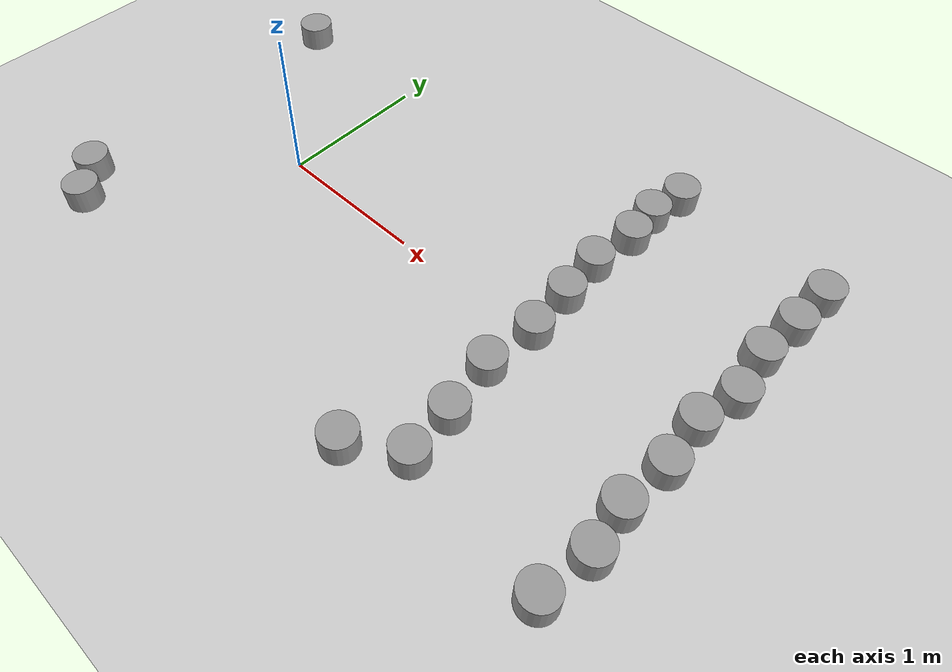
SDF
<sdf version="1.6">
 <world name="default">
  <model name="ground_plane">
   <static>1</static>
   <link name="link">
    <collision name="collision">
     <geometry><plane><normal>0 0 1</normal><size>100 100</size></plane></geometry>
     <surface>
      <contact><collide_bitmask>65535</collide_bitmask></contact>
      <friction><ode><mu>100</mu><mu2>50</mu2></ode></friction>
     </surface>
    </collision>
    <visual name="visual">
     <cast_shadows>0</cast_shadows>
     <geometry><plane><normal>0 0 1</normal><size>100 100</size></plane></geometry>
     <material>
      <script><uri>file://media/materials/scripts/gazebo.material</uri><name>Gazebo/Grey</name></script>
     </material>
    </visual>
   </link>
  </model>
  <model name="pillar_clone_25">
   <link name="link_0">
    <inertial>
     <mass>0.0172437</mass>
     <inertia>
      <ixx>0.000207925</ixx>
      <ixy>0</ixy>
      <ixz>0</ixz>
      <iyy>0.000207925</iyy>
      <iyz>0</iyz>
      <izz>0.000114861</izz>
     </inertia>
    </inertial>
    <pose>2e-06 -0 0 0 -0 0</pose>
    <visual name="visual">
     <geometry><cylinder><radius>0.115422</radius><length>0.32362</length></cylinder></geometry>
     <material>
      <lighting>1</lighting>
      <script><uri>file://media/materials/scripts/gazebo.material</uri><name>Gazebo/Grey</name></script>
      <shader type="vertex"><normal_map>__default__</normal_map></shader>
     </material>
    </visual>
    <collision name="collision">
     <geometry><cylinder><radius>0.115422</radius><length>0.32362</length></cylinder></geometry>
     <surface>
      <friction>
       <ode><mu>1</mu><mu2>1</mu2><fdir1>0 0 0</fdir1><slip1>0</slip1><slip2>0</slip2></ode>
       <torsional>
        <coefficient>1</coefficient>
        <patch_radius>0</patch_radius>
        <surface_radius>0</surface_radius>
        <use_patch_radius>1</use_patch_radius>
        <ode><slip>0</slip></ode>
       </torsional>
      </friction>
      <bounce><restitution_coefficient>0</restitution_coefficient><threshold>1e+06</threshold></bounce>
      <contact>
       <collide_without_contact>0</collide_without_contact>
       <collide_without_contact_bitmask>1</collide_without_contact_bitmask>
       <collide_bitmask>1</collide_bitmask>
       <ode>
        <soft_cfm>0</soft_cfm>
        <soft_erp>0.2</soft_erp>
        <kp>1e+13</kp>
        <kd>1</kd>
        <max_vel>0.01</max_vel>
        <min_depth>0</min_depth>
       </ode>
       <bullet>
        <split_impulse>1</split_impulse>
        <split_impulse_penetration_threshold>-0.01</split_impulse_penetration_threshold>
        <soft_cfm>0</soft_cfm>
        <soft_erp>0.2</soft_erp>
        <kp>1e+13</kp>
        <kd>1</kd>
       </bullet>
      </contact>
     </surface>
    </collision>
   </link>
   <static>1</static>
   <pose>3.08087 1.39534 0 0 -0 0</pose>
  </model>
  <model name="pillar_clone_26">
   <link name="link_0">
    <inertial>
     <mass>0.0172437</mass>
     <inertia>
      <ixx>0.000207925</ixx>
      <ixy>0</ixy>
      <ixz>0</ixz>
      <iyy>0.000207925</iyy>
      <iyz>0</iyz>
      <izz>0.000114861</izz>
     </inertia>
    </inertial>
    <pose>2e-06 -0 0 0 -0 0</pose>
    <visual name="visual">
     <geometry><cylinder><radius>0.115422</radius><length>0.32362</length></cylinder></geometry>
     <material>
      <lighting>1</lighting>
      <script><uri>file://media/materials/scripts/gazebo.material</uri><name>Gazebo/Grey</name></script>
      <shader type="vertex"><normal_map>__default__</normal_map></shader>
     </material>
    </visual>
    <collision name="collision">
     <geometry><cylinder><radius>0.115422</radius><length>0.32362</length></cylinder></geometry>
     <surface>
      <friction>
       <ode><mu>1</mu><mu2>1</mu2><fdir1>0 0 0</fdir1><slip1>0</slip1><slip2>0</slip2></ode>
       <torsional>
        <coefficient>1</coefficient>
        <patch_radius>0</patch_radius>
        <surface_radius>0</surface_radius>
        <use_patch_radius>1</use_patch_radius>
        <ode><slip>0</slip></ode>
       </torsional>
      </friction>
      <bounce><restitution_coefficient>0</restitution_coefficient><threshold>1e+06</threshold></bounce>
      <contact>
       <collide_without_contact>0</collide_without_contact>
       <collide_without_contact_bitmask>1</collide_without_contact_bitmask>
       <collide_bitmask>1</collide_bitmask>
       <ode>
        <soft_cfm>0</soft_cfm>
        <soft_erp>0.2</soft_erp>
        <kp>1e+13</kp>
        <kd>1</kd>
        <max_vel>0.01</max_vel>
        <min_depth>0</min_depth>
       </ode>
       <bullet>
        <split_impulse>1</split_impulse>
        <split_impulse_penetration_threshold>-0.01</split_impulse_penetration_threshold>
        <soft_cfm>0</soft_cfm>
        <soft_erp>0.2</soft_erp>
        <kp>1e+13</kp>
        <kd>1</kd>
       </bullet>
      </contact>
     </surface>
    </collision>
   </link>
   <static>1</static>
   <pose>3.0662 1.09873 0 0 -0 0</pose>
  </model>
  <model name="pillar_clone_27">
   <link name="link_0">
    <inertial>
     <mass>0.0172437</mass>
     <inertia>
      <ixx>0.000207925</ixx>
      <ixy>0</ixy>
      <ixz>0</ixz>
      <iyy>0.000207925</iyy>
      <iyz>0</iyz>
      <izz>0.000114861</izz>
     </inertia>
    </inertial>
    <pose>2e-06 -0 0 0 -0 0</pose>
    <visual name="visual">
     <geometry><cylinder><radius>0.115422</radius><length>0.32362</length></cylinder></geometry>
     <material>
      <lighting>1</lighting>
      <script><uri>file://media/materials/scripts/gazebo.material</uri><name>Gazebo/Grey</name></script>
      <shader type="vertex"><normal_map>__default__</normal_map></shader>
     </material>
    </visual>
    <collision name="collision">
     <geometry><cylinder><radius>0.115422</radius><length>0.32362</length></cylinder></geometry>
     <surface>
      <friction>
       <ode><mu>1</mu><mu2>1</mu2><fdir1>0 0 0</fdir1><slip1>0</slip1><slip2>0</slip2></ode>
       <torsional>
        <coefficient>1</coefficient>
        <patch_radius>0</patch_radius>
        <surface_radius>0</surface_radius>
        <use_patch_radius>1</use_patch_radius>
        <ode><slip>0</slip></ode>
       </torsional>
      </friction>
      <bounce><restitution_coefficient>0</restitution_coefficient><threshold>1e+06</threshold></bounce>
      <contact>
       <collide_without_contact>0</collide_without_contact>
       <collide_without_contact_bitmask>1</collide_without_contact_bitmask>
       <collide_bitmask>1</collide_bitmask>
       <ode>
        <soft_cfm>0</soft_cfm>
        <soft_erp>0.2</soft_erp>
        <kp>1e+13</kp>
        <kd>1</kd>
        <max_vel>0.01</max_vel>
        <min_depth>0</min_depth>
       </ode>
       <bullet>
        <split_impulse>1</split_impulse>
        <split_impulse_penetration_threshold>-0.01</split_impulse_penetration_threshold>
        <soft_cfm>0</soft_cfm>
        <soft_erp>0.2</soft_erp>
        <kp>1e+13</kp>
        <kd>1</kd>
       </bullet>
      </contact>
     </surface>
    </collision>
   </link>
   <static>1</static>
   <pose>3.03882 0.786964 0 0 -0 0</pose>
  </model>
  <model name="pillar_clone_28">
   <link name="link_0">
    <inertial>
     <mass>0.0172437</mass>
     <inertia>
      <ixx>0.000207925</ixx>
      <ixy>0</ixy>
      <ixz>0</ixz>
      <iyy>0.000207925</iyy>
      <iyz>0</iyz>
      <izz>0.000114861</izz>
     </inertia>
    </inertial>
    <pose>2e-06 -0 0 0 -0 0</pose>
    <visual name="visual">
     <geometry><cylinder><radius>0.115422</radius><length>0.32362</length></cylinder></geometry>
     <material>
      <lighting>1</lighting>
      <script><uri>file://media/materials/scripts/gazebo.material</uri><name>Gazebo/Grey</name></script>
      <shader type="vertex"><normal_map>__default__</normal_map></shader>
     </material>
    </visual>
    <collision name="collision">
     <geometry><cylinder><radius>0.115422</radius><length>0.32362</length></cylinder></geometry>
     <surface>
      <friction>
       <ode><mu>1</mu><mu2>1</mu2><fdir1>0 0 0</fdir1><slip1>0</slip1><slip2>0</slip2></ode>
       <torsional>
        <coefficient>1</coefficient>
        <patch_radius>0</patch_radius>
        <surface_radius>0</surface_radius>
        <use_patch_radius>1</use_patch_radius>
        <ode><slip>0</slip></ode>
       </torsional>
      </friction>
      <bounce><restitution_coefficient>0</restitution_coefficient><threshold>1e+06</threshold></bounce>
      <contact>
       <collide_without_contact>0</collide_without_contact>
       <collide_without_contact_bitmask>1</collide_without_contact_bitmask>
       <collide_bitmask>1</collide_bitmask>
       <ode>
        <soft_cfm>0</soft_cfm>
        <soft_erp>0.2</soft_erp>
        <kp>1e+13</kp>
        <kd>1</kd>
        <max_vel>0.01</max_vel>
        <min_depth>0</min_depth>
       </ode>
       <bullet>
        <split_impulse>1</split_impulse>
        <split_impulse_penetration_threshold>-0.01</split_impulse_penetration_threshold>
        <soft_cfm>0</soft_cfm>
        <soft_erp>0.2</soft_erp>
        <kp>1e+13</kp>
        <kd>1</kd>
       </bullet>
      </contact>
     </surface>
    </collision>
   </link>
   <static>1</static>
   <pose>3.08397 0.469575 0 0 -0 0</pose>
  </model>
  <model name="pillar_clone_29">
   <link name="link_0">
    <inertial>
     <mass>0.0172437</mass>
     <inertia>
      <ixx>0.000207925</ixx>
      <ixy>0</ixy>
      <ixz>0</ixz>
      <iyy>0.000207925</iyy>
      <iyz>0</iyz>
      <izz>0.000114861</izz>
     </inertia>
    </inertial>
    <pose>2e-06 -0 0 0 -0 0</pose>
    <visual name="visual">
     <geometry><cylinder><radius>0.115422</radius><length>0.32362</length></cylinder></geometry>
     <material>
      <lighting>1</lighting>
      <script><uri>file://media/materials/scripts/gazebo.material</uri><name>Gazebo/Grey</name></script>
      <shader type="vertex"><normal_map>__default__</normal_map></shader>
     </material>
    </visual>
    <collision name="collision">
     <geometry><cylinder><radius>0.115422</radius><length>0.32362</length></cylinder></geometry>
     <surface>
      <friction>
       <ode><mu>1</mu><mu2>1</mu2><fdir1>0 0 0</fdir1><slip1>0</slip1><slip2>0</slip2></ode>
       <torsional>
        <coefficient>1</coefficient>
        <patch_radius>0</patch_radius>
        <surface_radius>0</surface_radius>
        <use_patch_radius>1</use_patch_radius>
        <ode><slip>0</slip></ode>
       </torsional>
      </friction>
      <bounce><restitution_coefficient>0</restitution_coefficient><threshold>1e+06</threshold></bounce>
      <contact>
       <collide_without_contact>0</collide_without_contact>
       <collide_without_contact_bitmask>1</collide_without_contact_bitmask>
       <collide_bitmask>1</collide_bitmask>
       <ode>
        <soft_cfm>0</soft_cfm>
        <soft_erp>0.2</soft_erp>
        <kp>1e+13</kp>
        <kd>1</kd>
        <max_vel>0.01</max_vel>
        <min_depth>0</min_depth>
       </ode>
       <bullet>
        <split_impulse>1</split_impulse>
        <split_impulse_penetration_threshold>-0.01</split_impulse_penetration_threshold>
        <soft_cfm>0</soft_cfm>
        <soft_erp>0.2</soft_erp>
        <kp>1e+13</kp>
        <kd>1</kd>
       </bullet>
      </contact>
     </surface>
    </collision>
   </link>
   <static>1</static>
   <pose>3.0183 0.177162 0 0 -0 0</pose>
  </model>
  <model name="pillar_clone_30">
   <link name="link_0">
    <inertial>
     <mass>0.0172437</mass>
     <inertia>
      <ixx>0.000207925</ixx>
      <ixy>0</ixy>
      <ixz>0</ixz>
      <iyy>0.000207925</iyy>
      <iyz>0</iyz>
      <izz>0.000114861</izz>
     </inertia>
    </inertial>
    <pose>2e-06 -0 0 0 -0 0</pose>
    <visual name="visual">
     <geometry><cylinder><radius>0.115422</radius><length>0.32362</length></cylinder></geometry>
     <material>
      <lighting>1</lighting>
      <script><uri>file://media/materials/scripts/gazebo.material</uri><name>Gazebo/Grey</name></script>
      <shader type="vertex"><normal_map>__default__</normal_map></shader>
     </material>
    </visual>
    <collision name="collision">
     <geometry><cylinder><radius>0.115422</radius><length>0.32362</length></cylinder></geometry>
     <surface>
      <friction>
       <ode><mu>1</mu><mu2>1</mu2><fdir1>0 0 0</fdir1><slip1>0</slip1><slip2>0</slip2></ode>
       <torsional>
        <coefficient>1</coefficient>
        <patch_radius>0</patch_radius>
        <surface_radius>0</surface_radius>
        <use_patch_radius>1</use_patch_radius>
        <ode><slip>0</slip></ode>
       </torsional>
      </friction>
      <bounce><restitution_coefficient>0</restitution_coefficient><threshold>1e+06</threshold></bounce>
      <contact>
       <collide_without_contact>0</collide_without_contact>
       <collide_without_contact_bitmask>1</collide_without_contact_bitmask>
       <collide_bitmask>1</collide_bitmask>
       <ode>
        <soft_cfm>0</soft_cfm>
        <soft_erp>0.2</soft_erp>
        <kp>1e+13</kp>
        <kd>1</kd>
        <max_vel>0.01</max_vel>
        <min_depth>0</min_depth>
       </ode>
       <bullet>
        <split_impulse>1</split_impulse>
        <split_impulse_penetration_threshold>-0.01</split_impulse_penetration_threshold>
        <soft_cfm>0</soft_cfm>
        <soft_erp>0.2</soft_erp>
        <kp>1e+13</kp>
        <kd>1</kd>
       </bullet>
      </contact>
     </surface>
    </collision>
   </link>
   <static>1</static>
   <pose>3.04633 -0.136981 0 0 -0 0</pose>
  </model>
  <model name="pillar_clone_31">
   <link name="link_0">
    <inertial>
     <mass>0.0172437</mass>
     <inertia>
      <ixx>0.000207925</ixx>
      <ixy>0</ixy>
      <ixz>0</ixz>
      <iyy>0.000207925</iyy>
      <iyz>0</iyz>
      <izz>0.000114861</izz>
     </inertia>
    </inertial>
    <pose>2e-06 -0 0 0 -0 0</pose>
    <visual name="visual">
     <geometry><cylinder><radius>0.115422</radius><length>0.32362</length></cylinder></geometry>
     <material>
      <lighting>1</lighting>
      <script><uri>file://media/materials/scripts/gazebo.material</uri><name>Gazebo/Grey</name></script>
      <shader type="vertex"><normal_map>__default__</normal_map></shader>
     </material>
    </visual>
    <collision name="collision">
     <geometry><cylinder><radius>0.115422</radius><length>0.32362</length></cylinder></geometry>
     <surface>
      <friction>
       <ode><mu>1</mu><mu2>1</mu2><fdir1>0 0 0</fdir1><slip1>0</slip1><slip2>0</slip2></ode>
       <torsional>
        <coefficient>1</coefficient>
        <patch_radius>0</patch_radius>
        <surface_radius>0</surface_radius>
        <use_patch_radius>1</use_patch_radius>
        <ode><slip>0</slip></ode>
       </torsional>
      </friction>
      <bounce><restitution_coefficient>0</restitution_coefficient><threshold>1e+06</threshold></bounce>
      <contact>
       <collide_without_contact>0</collide_without_contact>
       <collide_without_contact_bitmask>1</collide_without_contact_bitmask>
       <collide_bitmask>1</collide_bitmask>
       <ode>
        <soft_cfm>0</soft_cfm>
        <soft_erp>0.2</soft_erp>
        <kp>1e+13</kp>
        <kd>1</kd>
        <max_vel>0.01</max_vel>
        <min_depth>0</min_depth>
       </ode>
       <bullet>
        <split_impulse>1</split_impulse>
        <split_impulse_penetration_threshold>-0.01</split_impulse_penetration_threshold>
        <soft_cfm>0</soft_cfm>
        <soft_erp>0.2</soft_erp>
        <kp>1e+13</kp>
        <kd>1</kd>
       </bullet>
      </contact>
     </surface>
    </collision>
   </link>
   <static>1</static>
   <pose>3.01254 -0.476016 0 0 -0 0</pose>
  </model>
  <model name="pillar_clone_32">
   <link name="link_0">
    <inertial>
     <mass>0.0172437</mass>
     <inertia>
      <ixx>0.000207925</ixx>
      <ixy>0</ixy>
      <ixz>0</ixz>
      <iyy>0.000207925</iyy>
      <iyz>0</iyz>
      <izz>0.000114861</izz>
     </inertia>
    </inertial>
    <pose>2e-06 -0 0 0 -0 0</pose>
    <visual name="visual">
     <geometry><cylinder><radius>0.115422</radius><length>0.32362</length></cylinder></geometry>
     <material>
      <lighting>1</lighting>
      <script><uri>file://media/materials/scripts/gazebo.material</uri><name>Gazebo/Grey</name></script>
      <shader type="vertex"><normal_map>__default__</normal_map></shader>
     </material>
    </visual>
    <collision name="collision">
     <geometry><cylinder><radius>0.115422</radius><length>0.32362</length></cylinder></geometry>
     <surface>
      <friction>
       <ode><mu>1</mu><mu2>1</mu2><fdir1>0 0 0</fdir1><slip1>0</slip1><slip2>0</slip2></ode>
       <torsional>
        <coefficient>1</coefficient>
        <patch_radius>0</patch_radius>
        <surface_radius>0</surface_radius>
        <use_patch_radius>1</use_patch_radius>
        <ode><slip>0</slip></ode>
       </torsional>
      </friction>
      <bounce><restitution_coefficient>0</restitution_coefficient><threshold>1e+06</threshold></bounce>
      <contact>
       <collide_without_contact>0</collide_without_contact>
       <collide_without_contact_bitmask>1</collide_without_contact_bitmask>
       <collide_bitmask>1</collide_bitmask>
       <ode>
        <soft_cfm>0</soft_cfm>
        <soft_erp>0.2</soft_erp>
        <kp>1e+13</kp>
        <kd>1</kd>
        <max_vel>0.01</max_vel>
        <min_depth>0</min_depth>
       </ode>
       <bullet>
        <split_impulse>1</split_impulse>
        <split_impulse_penetration_threshold>-0.01</split_impulse_penetration_threshold>
        <soft_cfm>0</soft_cfm>
        <soft_erp>0.2</soft_erp>
        <kp>1e+13</kp>
        <kd>1</kd>
       </bullet>
      </contact>
     </surface>
    </collision>
   </link>
   <static>1</static>
   <pose>3.05111 -0.761142 0 0 -0 0</pose>
  </model>
  <model name="pillar_clone_33">
   <link name="link_0">
    <inertial>
     <mass>0.0172437</mass>
     <inertia>
      <ixx>0.000207925</ixx>
      <ixy>0</ixy>
      <ixz>0</ixz>
      <iyy>0.000207925</iyy>
      <iyz>0</iyz>
      <izz>0.000114861</izz>
     </inertia>
    </inertial>
    <pose>2e-06 -0 0 0 -0 0</pose>
    <visual name="visual">
     <geometry><cylinder><radius>0.115422</radius><length>0.32362</length></cylinder></geometry>
     <material>
      <lighting>1</lighting>
      <script><uri>file://media/materials/scripts/gazebo.material</uri><name>Gazebo/Grey</name></script>
      <shader type="vertex"><normal_map>__default__</normal_map></shader>
     </material>
    </visual>
    <collision name="collision">
     <geometry><cylinder><radius>0.115422</radius><length>0.32362</length></cylinder></geometry>
     <surface>
      <friction>
       <ode><mu>1</mu><mu2>1</mu2><fdir1>0 0 0</fdir1><slip1>0</slip1><slip2>0</slip2></ode>
       <torsional>
        <coefficient>1</coefficient>
        <patch_radius>0</patch_radius>
        <surface_radius>0</surface_radius>
        <use_patch_radius>1</use_patch_radius>
        <ode><slip>0</slip></ode>
       </torsional>
      </friction>
      <bounce><restitution_coefficient>0</restitution_coefficient><threshold>1e+06</threshold></bounce>
      <contact>
       <collide_without_contact>0</collide_without_contact>
       <collide_without_contact_bitmask>1</collide_without_contact_bitmask>
       <collide_bitmask>1</collide_bitmask>
       <ode>
        <soft_cfm>0</soft_cfm>
        <soft_erp>0.2</soft_erp>
        <kp>1e+13</kp>
        <kd>1</kd>
        <max_vel>0.01</max_vel>
        <min_depth>0</min_depth>
       </ode>
       <bullet>
        <split_impulse>1</split_impulse>
        <split_impulse_penetration_threshold>-0.01</split_impulse_penetration_threshold>
        <soft_cfm>0</soft_cfm>
        <soft_erp>0.2</soft_erp>
        <kp>1e+13</kp>
        <kd>1</kd>
       </bullet>
      </contact>
     </surface>
    </collision>
   </link>
   <static>1</static>
   <pose>3.0028 -1.10097 0 0 -0 0</pose>
  </model>
  <model name="pillar_clone_36_clone_27">
   <link name="link_0">
    <inertial>
     <mass>0.0172437</mass>
     <inertia>
      <ixx>0.000207925</ixx>
      <ixy>0</ixy>
      <ixz>0</ixz>
      <iyy>0.000207925</iyy>
      <iyz>0</iyz>
      <izz>0.000114861</izz>
     </inertia>
    </inertial>
    <pose>2e-06 -0 0 0 -0 0</pose>
    <visual name="visual">
     <geometry><cylinder><radius>0.115422</radius><length>0.32362</length></cylinder></geometry>
     <material>
      <lighting>1</lighting>
      <script><uri>file://media/materials/scripts/gazebo.material</uri><name>Gazebo/Grey</name></script>
      <shader type="vertex"><normal_map>__default__</normal_map></shader>
     </material>
    </visual>
    <collision name="collision">
     <geometry><cylinder><radius>0.115422</radius><length>0.32362</length></cylinder></geometry>
     <surface>
      <friction>
       <ode><mu>1</mu><mu2>1</mu2><fdir1>0 0 0</fdir1><slip1>0</slip1><slip2>0</slip2></ode>
       <torsional>
        <coefficient>1</coefficient>
        <patch_radius>0</patch_radius>
        <surface_radius>0</surface_radius>
        <use_patch_radius>1</use_patch_radius>
        <ode><slip>0</slip></ode>
       </torsional>
      </friction>
      <bounce><restitution_coefficient>0</restitution_coefficient><threshold>1e+06</threshold></bounce>
      <contact>
       <collide_without_contact>0</collide_without_contact>
       <collide_without_contact_bitmask>1</collide_without_contact_bitmask>
       <collide_bitmask>1</collide_bitmask>
       <ode>
        <soft_cfm>0</soft_cfm>
        <soft_erp>0.2</soft_erp>
        <kp>1e+13</kp>
        <kd>1</kd>
        <max_vel>0.01</max_vel>
        <min_depth>0</min_depth>
       </ode>
       <bullet>
        <split_impulse>1</split_impulse>
        <split_impulse_penetration_threshold>-0.01</split_impulse_penetration_threshold>
        <soft_cfm>0</soft_cfm>
        <soft_erp>0.2</soft_erp>
        <kp>1e+13</kp>
        <kd>1</kd>
       </bullet>
      </contact>
     </surface>
    </collision>
   </link>
   <static>1</static>
   <pose>2.0719 -1.00318 0 0 -0 0</pose>
  </model>
  <model name="pillar_clone_36_clone_28">
   <link name="link_0">
    <inertial>
     <mass>0.0172437</mass>
     <inertia>
      <ixx>0.000207925</ixx>
      <ixy>0</ixy>
      <ixz>0</ixz>
      <iyy>0.000207925</iyy>
      <iyz>0</iyz>
      <izz>0.000114861</izz>
     </inertia>
    </inertial>
    <pose>2e-06 -0 0 0 -0 0</pose>
    <visual name="visual">
     <geometry><cylinder><radius>0.115422</radius><length>0.32362</length></cylinder></geometry>
     <material>
      <lighting>1</lighting>
      <script><uri>file://media/materials/scripts/gazebo.material</uri><name>Gazebo/Grey</name></script>
      <shader type="vertex"><normal_map>__default__</normal_map></shader>
     </material>
    </visual>
    <collision name="collision">
     <geometry><cylinder><radius>0.115422</radius><length>0.32362</length></cylinder></geometry>
     <surface>
      <friction>
       <ode><mu>1</mu><mu2>1</mu2><fdir1>0 0 0</fdir1><slip1>0</slip1><slip2>0</slip2></ode>
       <torsional>
        <coefficient>1</coefficient>
        <patch_radius>0</patch_radius>
        <surface_radius>0</surface_radius>
        <use_patch_radius>1</use_patch_radius>
        <ode><slip>0</slip></ode>
       </torsional>
      </friction>
      <bounce><restitution_coefficient>0</restitution_coefficient><threshold>1e+06</threshold></bounce>
      <contact>
       <collide_without_contact>0</collide_without_contact>
       <collide_without_contact_bitmask>1</collide_without_contact_bitmask>
       <collide_bitmask>1</collide_bitmask>
       <ode>
        <soft_cfm>0</soft_cfm>
        <soft_erp>0.2</soft_erp>
        <kp>1e+13</kp>
        <kd>1</kd>
        <max_vel>0.01</max_vel>
        <min_depth>0</min_depth>
       </ode>
       <bullet>
        <split_impulse>1</split_impulse>
        <split_impulse_penetration_threshold>-0.01</split_impulse_penetration_threshold>
        <soft_cfm>0</soft_cfm>
        <soft_erp>0.2</soft_erp>
        <kp>1e+13</kp>
        <kd>1</kd>
       </bullet>
      </contact>
     </surface>
    </collision>
   </link>
   <static>1</static>
   <pose>-0.938646 -0.983259 0 0 -0 0</pose>
  </model>
  <model name="pillar_clone_36_clone_34">
   <link name="link_0">
    <inertial>
     <mass>0.0172437</mass>
     <inertia>
      <ixx>0.000207925</ixx>
      <ixy>0</ixy>
      <ixz>0</ixz>
      <iyy>0.000207925</iyy>
      <iyz>0</iyz>
      <izz>0.000114861</izz>
     </inertia>
    </inertial>
    <pose>2e-06 -0 0 0 -0 0</pose>
    <visual name="visual">
     <geometry><cylinder><radius>0.115422</radius><length>0.32362</length></cylinder></geometry>
     <material>
      <lighting>1</lighting>
      <script><uri>file://media/materials/scripts/gazebo.material</uri><name>Gazebo/Grey</name></script>
      <shader type="vertex"><normal_map>__default__</normal_map></shader>
     </material>
    </visual>
    <collision name="collision">
     <geometry><cylinder><radius>0.115422</radius><length>0.32362</length></cylinder></geometry>
     <surface>
      <friction>
       <ode><mu>1</mu><mu2>1</mu2><fdir1>0 0 0</fdir1><slip1>0</slip1><slip2>0</slip2></ode>
       <torsional>
        <coefficient>1</coefficient>
        <patch_radius>0</patch_radius>
        <surface_radius>0</surface_radius>
        <use_patch_radius>1</use_patch_radius>
        <ode><slip>0</slip></ode>
       </torsional>
      </friction>
      <bounce><restitution_coefficient>0</restitution_coefficient><threshold>1e+06</threshold></bounce>
      <contact>
       <collide_without_contact>0</collide_without_contact>
       <collide_without_contact_bitmask>1</collide_without_contact_bitmask>
       <collide_bitmask>1</collide_bitmask>
       <ode>
        <soft_cfm>0</soft_cfm>
        <soft_erp>0.2</soft_erp>
        <kp>1e+13</kp>
        <kd>1</kd>
        <max_vel>0.01</max_vel>
        <min_depth>0</min_depth>
       </ode>
       <bullet>
        <split_impulse>1</split_impulse>
        <split_impulse_penetration_threshold>-0.01</split_impulse_penetration_threshold>
        <soft_cfm>0</soft_cfm>
        <soft_erp>0.2</soft_erp>
        <kp>1e+13</kp>
        <kd>1</kd>
       </bullet>
      </contact>
     </surface>
    </collision>
   </link>
   <static>1</static>
   <pose>2.02673 1.48468 0 0 -0 0</pose>
  </model>
  <model name="pillar_clone_36_clone_35">
   <link name="link_0">
    <inertial>
     <mass>0.0172437</mass>
     <inertia>
      <ixx>0.000207925</ixx>
      <ixy>0</ixy>
      <ixz>0</ixz>
      <iyy>0.000207925</iyy>
      <iyz>0</iyz>
      <izz>0.000114861</izz>
     </inertia>
    </inertial>
    <pose>2e-06 -0 0 0 -0 0</pose>
    <visual name="visual">
     <geometry><cylinder><radius>0.115422</radius><length>0.32362</length></cylinder></geometry>
     <material>
      <lighting>1</lighting>
      <script><uri>file://media/materials/scripts/gazebo.material</uri><name>Gazebo/Grey</name></script>
      <shader type="vertex"><normal_map>__default__</normal_map></shader>
     </material>
    </visual>
    <collision name="collision">
     <geometry><cylinder><radius>0.115422</radius><length>0.32362</length></cylinder></geometry>
     <surface>
      <friction>
       <ode><mu>1</mu><mu2>1</mu2><fdir1>0 0 0</fdir1><slip1>0</slip1><slip2>0</slip2></ode>
       <torsional>
        <coefficient>1</coefficient>
        <patch_radius>0</patch_radius>
        <surface_radius>0</surface_radius>
        <use_patch_radius>1</use_patch_radius>
        <ode><slip>0</slip></ode>
       </torsional>
      </friction>
      <bounce><restitution_coefficient>0</restitution_coefficient><threshold>1e+06</threshold></bounce>
      <contact>
       <collide_without_contact>0</collide_without_contact>
       <collide_without_contact_bitmask>1</collide_without_contact_bitmask>
       <collide_bitmask>1</collide_bitmask>
       <ode>
        <soft_cfm>0</soft_cfm>
        <soft_erp>0.2</soft_erp>
        <kp>1e+13</kp>
        <kd>1</kd>
        <max_vel>0.01</max_vel>
        <min_depth>0</min_depth>
       </ode>
       <bullet>
        <split_impulse>1</split_impulse>
        <split_impulse_penetration_threshold>-0.01</split_impulse_penetration_threshold>
        <soft_cfm>0</soft_cfm>
        <soft_erp>0.2</soft_erp>
        <kp>1e+13</kp>
        <kd>1</kd>
       </bullet>
      </contact>
     </surface>
    </collision>
   </link>
   <static>1</static>
   <pose>2 1 0 0 -0 0</pose>
  </model>
  <model name="pillar_clone_36_clone_36">
   <link name="link_0">
    <inertial>
     <mass>0.0172437</mass>
     <inertia>
      <ixx>0.000207925</ixx>
      <ixy>0</ixy>
      <ixz>0</ixz>
      <iyy>0.000207925</iyy>
      <iyz>0</iyz>
      <izz>0.000114861</izz>
     </inertia>
    </inertial>
    <pose>2e-06 -0 0 0 -0 0</pose>
    <visual name="visual">
     <geometry><cylinder><radius>0.115422</radius><length>0.32362</length></cylinder></geometry>
     <material>
      <lighting>1</lighting>
      <script><uri>file://media/materials/scripts/gazebo.material</uri><name>Gazebo/Grey</name></script>
      <shader type="vertex"><normal_map>__default__</normal_map></shader>
     </material>
    </visual>
    <collision name="collision">
     <geometry><cylinder><radius>0.115422</radius><length>0.32362</length></cylinder></geometry>
     <surface>
      <friction>
       <ode><mu>1</mu><mu2>1</mu2><fdir1>0 0 0</fdir1><slip1>0</slip1><slip2>0</slip2></ode>
       <torsional>
        <coefficient>1</coefficient>
        <patch_radius>0</patch_radius>
        <surface_radius>0</surface_radius>
        <use_patch_radius>1</use_patch_radius>
        <ode><slip>0</slip></ode>
       </torsional>
      </friction>
      <bounce><restitution_coefficient>0</restitution_coefficient><threshold>1e+06</threshold></bounce>
      <contact>
       <collide_without_contact>0</collide_without_contact>
       <collide_without_contact_bitmask>1</collide_without_contact_bitmask>
       <collide_bitmask>1</collide_bitmask>
       <ode>
        <soft_cfm>0</soft_cfm>
        <soft_erp>0.2</soft_erp>
        <kp>1e+13</kp>
        <kd>1</kd>
        <max_vel>0.01</max_vel>
        <min_depth>0</min_depth>
       </ode>
       <bullet>
        <split_impulse>1</split_impulse>
        <split_impulse_penetration_threshold>-0.01</split_impulse_penetration_threshold>
        <soft_cfm>0</soft_cfm>
        <soft_erp>0.2</soft_erp>
        <kp>1e+13</kp>
        <kd>1</kd>
       </bullet>
      </contact>
     </surface>
    </collision>
   </link>
   <static>1</static>
   <pose>1.98116 1.2342 0 0 -0 0</pose>
  </model>
  <model name="pillar_clone_36_clone_37">
   <link name="link_0">
    <inertial>
     <mass>0.0172437</mass>
     <inertia>
      <ixx>0.000207925</ixx>
      <ixy>0</ixy>
      <ixz>0</ixz>
      <iyy>0.000207925</iyy>
      <iyz>0</iyz>
      <izz>0.000114861</izz>
     </inertia>
    </inertial>
    <pose>2e-06 -0 0 0 -0 0</pose>
    <visual name="visual">
     <geometry><cylinder><radius>0.115422</radius><length>0.32362</length></cylinder></geometry>
     <material>
      <lighting>1</lighting>
      <script><uri>file://media/materials/scripts/gazebo.material</uri><name>Gazebo/Grey</name></script>
      <shader type="vertex"><normal_map>__default__</normal_map></shader>
     </material>
    </visual>
    <collision name="collision">
     <geometry><cylinder><radius>0.115422</radius><length>0.32362</length></cylinder></geometry>
     <surface>
      <friction>
       <ode><mu>1</mu><mu2>1</mu2><fdir1>0 0 0</fdir1><slip1>0</slip1><slip2>0</slip2></ode>
       <torsional>
        <coefficient>1</coefficient>
        <patch_radius>0</patch_radius>
        <surface_radius>0</surface_radius>
        <use_patch_radius>1</use_patch_radius>
        <ode><slip>0</slip></ode>
       </torsional>
      </friction>
      <bounce><restitution_coefficient>0</restitution_coefficient><threshold>1e+06</threshold></bounce>
      <contact>
       <collide_without_contact>0</collide_without_contact>
       <collide_without_contact_bitmask>1</collide_without_contact_bitmask>
       <collide_bitmask>1</collide_bitmask>
       <ode>
        <soft_cfm>0</soft_cfm>
        <soft_erp>0.2</soft_erp>
        <kp>1e+13</kp>
        <kd>1</kd>
        <max_vel>0.01</max_vel>
        <min_depth>0</min_depth>
       </ode>
       <bullet>
        <split_impulse>1</split_impulse>
        <split_impulse_penetration_threshold>-0.01</split_impulse_penetration_threshold>
        <soft_cfm>0</soft_cfm>
        <soft_erp>0.2</soft_erp>
        <kp>1e+13</kp>
        <kd>1</kd>
       </bullet>
      </contact>
     </surface>
    </collision>
   </link>
   <static>1</static>
   <pose>1.96284 0.669627 0 0 -0 0</pose>
  </model>
  <model name="pillar_clone_36_clone_38">
   <link name="link_0">
    <inertial>
     <mass>0.0172437</mass>
     <inertia>
      <ixx>0.000207925</ixx>
      <ixy>0</ixy>
      <ixz>0</ixz>
      <iyy>0.000207925</iyy>
      <iyz>0</iyz>
      <izz>0.000114861</izz>
     </inertia>
    </inertial>
    <pose>2e-06 -0 0 0 -0 0</pose>
    <visual name="visual">
     <geometry><cylinder><radius>0.115422</radius><length>0.32362</length></cylinder></geometry>
     <material>
      <lighting>1</lighting>
      <script><uri>file://media/materials/scripts/gazebo.material</uri><name>Gazebo/Grey</name></script>
      <shader type="vertex"><normal_map>__default__</normal_map></shader>
     </material>
    </visual>
    <collision name="collision">
     <geometry><cylinder><radius>0.115422</radius><length>0.32362</length></cylinder></geometry>
     <surface>
      <friction>
       <ode><mu>1</mu><mu2>1</mu2><fdir1>0 0 0</fdir1><slip1>0</slip1><slip2>0</slip2></ode>
       <torsional>
        <coefficient>1</coefficient>
        <patch_radius>0</patch_radius>
        <surface_radius>0</surface_radius>
        <use_patch_radius>1</use_patch_radius>
        <ode><slip>0</slip></ode>
       </torsional>
      </friction>
      <bounce><restitution_coefficient>0</restitution_coefficient><threshold>1e+06</threshold></bounce>
      <contact>
       <collide_without_contact>0</collide_without_contact>
       <collide_without_contact_bitmask>1</collide_without_contact_bitmask>
       <collide_bitmask>1</collide_bitmask>
       <ode>
        <soft_cfm>0</soft_cfm>
        <soft_erp>0.2</soft_erp>
        <kp>1e+13</kp>
        <kd>1</kd>
        <max_vel>0.01</max_vel>
        <min_depth>0</min_depth>
       </ode>
       <bullet>
        <split_impulse>1</split_impulse>
        <split_impulse_penetration_threshold>-0.01</split_impulse_penetration_threshold>
        <soft_cfm>0</soft_cfm>
        <soft_erp>0.2</soft_erp>
        <kp>1e+13</kp>
        <kd>1</kd>
       </bullet>
      </contact>
     </surface>
    </collision>
   </link>
   <static>1</static>
   <pose>1.98814 0.367597 0 0 -0 0</pose>
  </model>
  <model name="pillar_clone_36_clone_39">
   <link name="link_0">
    <inertial>
     <mass>0.0172437</mass>
     <inertia>
      <ixx>0.000207925</ixx>
      <ixy>0</ixy>
      <ixz>0</ixz>
      <iyy>0.000207925</iyy>
      <iyz>0</iyz>
      <izz>0.000114861</izz>
     </inertia>
    </inertial>
    <pose>2e-06 -0 0 0 -0 0</pose>
    <visual name="visual">
     <geometry><cylinder><radius>0.115422</radius><length>0.32362</length></cylinder></geometry>
     <material>
      <lighting>1</lighting>
      <script><uri>file://media/materials/scripts/gazebo.material</uri><name>Gazebo/Grey</name></script>
      <shader type="vertex"><normal_map>__default__</normal_map></shader>
     </material>
    </visual>
    <collision name="collision">
     <geometry><cylinder><radius>0.115422</radius><length>0.32362</length></cylinder></geometry>
     <surface>
      <friction>
       <ode><mu>1</mu><mu2>1</mu2><fdir1>0 0 0</fdir1><slip1>0</slip1><slip2>0</slip2></ode>
       <torsional>
        <coefficient>1</coefficient>
        <patch_radius>0</patch_radius>
        <surface_radius>0</surface_radius>
        <use_patch_radius>1</use_patch_radius>
        <ode><slip>0</slip></ode>
       </torsional>
      </friction>
      <bounce><restitution_coefficient>0</restitution_coefficient><threshold>1e+06</threshold></bounce>
      <contact>
       <collide_without_contact>0</collide_without_contact>
       <collide_without_contact_bitmask>1</collide_without_contact_bitmask>
       <collide_bitmask>1</collide_bitmask>
       <ode>
        <soft_cfm>0</soft_cfm>
        <soft_erp>0.2</soft_erp>
        <kp>1e+13</kp>
        <kd>1</kd>
        <max_vel>0.01</max_vel>
        <min_depth>0</min_depth>
       </ode>
       <bullet>
        <split_impulse>1</split_impulse>
        <split_impulse_penetration_threshold>-0.01</split_impulse_penetration_threshold>
        <soft_cfm>0</soft_cfm>
        <soft_erp>0.2</soft_erp>
        <kp>1e+13</kp>
        <kd>1</kd>
       </bullet>
      </contact>
     </surface>
    </collision>
   </link>
   <static>1</static>
   <pose>2.01646 0.042456 0 0 -0 0</pose>
  </model>
  <model name="pillar_clone_36_clone_40">
   <link name="link_0">
    <inertial>
     <mass>0.0172437</mass>
     <inertia>
      <ixx>0.000207925</ixx>
      <ixy>0</ixy>
      <ixz>0</ixz>
      <iyy>0.000207925</iyy>
      <iyz>0</iyz>
      <izz>0.000114861</izz>
     </inertia>
    </inertial>
    <pose>2e-06 -0 0 0 -0 0</pose>
    <visual name="visual">
     <geometry><cylinder><radius>0.115422</radius><length>0.32362</length></cylinder></geometry>
     <material>
      <lighting>1</lighting>
      <script><uri>file://media/materials/scripts/gazebo.material</uri><name>Gazebo/Grey</name></script>
      <shader type="vertex"><normal_map>__default__</normal_map></shader>
     </material>
    </visual>
    <collision name="collision">
     <geometry><cylinder><radius>0.115422</radius><length>0.32362</length></cylinder></geometry>
     <surface>
      <friction>
       <ode><mu>1</mu><mu2>1</mu2><fdir1>0 0 0</fdir1><slip1>0</slip1><slip2>0</slip2></ode>
       <torsional>
        <coefficient>1</coefficient>
        <patch_radius>0</patch_radius>
        <surface_radius>0</surface_radius>
        <use_patch_radius>1</use_patch_radius>
        <ode><slip>0</slip></ode>
       </torsional>
      </friction>
      <bounce><restitution_coefficient>0</restitution_coefficient><threshold>1e+06</threshold></bounce>
      <contact>
       <collide_without_contact>0</collide_without_contact>
       <collide_without_contact_bitmask>1</collide_without_contact_bitmask>
       <collide_bitmask>1</collide_bitmask>
       <ode>
        <soft_cfm>0</soft_cfm>
        <soft_erp>0.2</soft_erp>
        <kp>1e+13</kp>
        <kd>1</kd>
        <max_vel>0.01</max_vel>
        <min_depth>0</min_depth>
       </ode>
       <bullet>
        <split_impulse>1</split_impulse>
        <split_impulse_penetration_threshold>-0.01</split_impulse_penetration_threshold>
        <soft_cfm>0</soft_cfm>
        <soft_erp>0.2</soft_erp>
        <kp>1e+13</kp>
        <kd>1</kd>
       </bullet>
      </contact>
     </surface>
    </collision>
   </link>
   <static>1</static>
   <pose>1.98576 -0.321568 0 0 -0 0</pose>
  </model>
  <model name="pillar_clone_36_clone_41">
   <link name="link_0">
    <inertial>
     <mass>0.0172437</mass>
     <inertia>
      <ixx>0.000207925</ixx>
      <ixy>0</ixy>
      <ixz>0</ixz>
      <iyy>0.000207925</iyy>
      <iyz>0</iyz>
      <izz>0.000114861</izz>
     </inertia>
    </inertial>
    <pose>2e-06 -0 0 0 -0 0</pose>
    <visual name="visual">
     <geometry><cylinder><radius>0.115422</radius><length>0.32362</length></cylinder></geometry>
     <material>
      <lighting>1</lighting>
      <script><uri>file://media/materials/scripts/gazebo.material</uri><name>Gazebo/Grey</name></script>
      <shader type="vertex"><normal_map>__default__</normal_map></shader>
     </material>
    </visual>
    <collision name="collision">
     <geometry><cylinder><radius>0.115422</radius><length>0.32362</length></cylinder></geometry>
     <surface>
      <friction>
       <ode><mu>1</mu><mu2>1</mu2><fdir1>0 0 0</fdir1><slip1>0</slip1><slip2>0</slip2></ode>
       <torsional>
        <coefficient>1</coefficient>
        <patch_radius>0</patch_radius>
        <surface_radius>0</surface_radius>
        <use_patch_radius>1</use_patch_radius>
        <ode><slip>0</slip></ode>
       </torsional>
      </friction>
      <bounce><restitution_coefficient>0</restitution_coefficient><threshold>1e+06</threshold></bounce>
      <contact>
       <collide_without_contact>0</collide_without_contact>
       <collide_without_contact_bitmask>1</collide_without_contact_bitmask>
       <collide_bitmask>1</collide_bitmask>
       <ode>
        <soft_cfm>0</soft_cfm>
        <soft_erp>0.2</soft_erp>
        <kp>1e+13</kp>
        <kd>1</kd>
        <max_vel>0.01</max_vel>
        <min_depth>0</min_depth>
       </ode>
       <bullet>
        <split_impulse>1</split_impulse>
        <split_impulse_penetration_threshold>-0.01</split_impulse_penetration_threshold>
        <soft_cfm>0</soft_cfm>
        <soft_erp>0.2</soft_erp>
        <kp>1e+13</kp>
        <kd>1</kd>
       </bullet>
      </contact>
     </surface>
    </collision>
   </link>
   <static>1</static>
   <pose>2.04391 -0.679046 0 0 -0 0</pose>
  </model>
  <model name="pillar_clone_36_clone_44">
   <link name="link_0">
    <inertial>
     <mass>0.0172437</mass>
     <inertia>
      <ixx>0.000207925</ixx>
      <ixy>0</ixy>
      <ixz>0</ixz>
      <iyy>0.000207925</iyy>
      <iyz>0</iyz>
      <izz>0.000114861</izz>
     </inertia>
    </inertial>
    <pose>2e-06 -0 0 0 -0 0</pose>
    <visual name="visual">
     <geometry><cylinder><radius>0.115422</radius><length>0.32362</length></cylinder></geometry>
     <material>
      <lighting>1</lighting>
      <script><uri>file://media/materials/scripts/gazebo.material</uri><name>Gazebo/Grey</name></script>
      <shader type="vertex"><normal_map>__default__</normal_map></shader>
     </material>
    </visual>
    <collision name="collision">
     <geometry><cylinder><radius>0.115422</radius><length>0.32362</length></cylinder></geometry>
     <surface>
      <friction>
       <ode><mu>1</mu><mu2>1</mu2><fdir1>0 0 0</fdir1><slip1>0</slip1><slip2>0</slip2></ode>
       <torsional>
        <coefficient>1</coefficient>
        <patch_radius>0</patch_radius>
        <surface_radius>0</surface_radius>
        <use_patch_radius>1</use_patch_radius>
        <ode><slip>0</slip></ode>
       </torsional>
      </friction>
      <bounce><restitution_coefficient>0</restitution_coefficient><threshold>1e+06</threshold></bounce>
      <contact>
       <collide_without_contact>0</collide_without_contact>
       <collide_without_contact_bitmask>1</collide_without_contact_bitmask>
       <collide_bitmask>1</collide_bitmask>
       <ode>
        <soft_cfm>0</soft_cfm>
        <soft_erp>0.2</soft_erp>
        <kp>1e+13</kp>
        <kd>1</kd>
        <max_vel>0.01</max_vel>
        <min_depth>0</min_depth>
       </ode>
       <bullet>
        <split_impulse>1</split_impulse>
        <split_impulse_penetration_threshold>-0.01</split_impulse_penetration_threshold>
        <soft_cfm>0</soft_cfm>
        <soft_erp>0.2</soft_erp>
        <kp>1e+13</kp>
        <kd>1</kd>
       </bullet>
      </contact>
     </surface>
    </collision>
   </link>
   <static>1</static>
   <pose>-0.752278 -1.17414 0 0 -0 0</pose>
  </model>
  <model name="pillar_clone_36_clone_51">
   <link name="link_0">
    <inertial>
     <mass>0.0172437</mass>
     <inertia>
      <ixx>0.000207925</ixx>
      <ixy>0</ixy>
      <ixz>0</ixz>
      <iyy>0.000207925</iyy>
      <iyz>0</iyz>
      <izz>0.000114861</izz>
     </inertia>
    </inertial>
    <pose>2e-06 -0 0 0 -0 0</pose>
    <visual name="visual">
     <geometry><cylinder><radius>0.115422</radius><length>0.32362</length></cylinder></geometry>
     <material>
      <lighting>1</lighting>
      <script><uri>file://media/materials/scripts/gazebo.material</uri><name>Gazebo/Grey</name></script>
      <shader type="vertex"><normal_map>__default__</normal_map></shader>
     </material>
    </visual>
    <collision name="collision">
     <geometry><cylinder><radius>0.115422</radius><length>0.32362</length></cylinder></geometry>
     <surface>
      <friction>
       <ode><mu>1</mu><mu2>1</mu2><fdir1>0 0 0</fdir1><slip1>0</slip1><slip2>0</slip2></ode>
       <torsional>
        <coefficient>1</coefficient>
        <patch_radius>0</patch_radius>
        <surface_radius>0</surface_radius>
        <use_patch_radius>1</use_patch_radius>
        <ode><slip>0</slip></ode>
       </torsional>
      </friction>
      <bounce><restitution_coefficient>0</restitution_coefficient><threshold>1e+06</threshold></bounce>
      <contact>
       <collide_without_contact>0</collide_without_contact>
       <collide_without_contact_bitmask>1</collide_without_contact_bitmask>
       <collide_bitmask>1</collide_bitmask>
       <ode>
        <soft_cfm>0</soft_cfm>
        <soft_erp>0.2</soft_erp>
        <kp>1e+13</kp>
        <kd>1</kd>
        <max_vel>0.01</max_vel>
        <min_depth>0</min_depth>
       </ode>
       <bullet>
        <split_impulse>1</split_impulse>
        <split_impulse_penetration_threshold>-0.01</split_impulse_penetration_threshold>
        <soft_cfm>0</soft_cfm>
        <soft_erp>0.2</soft_erp>
        <kp>1e+13</kp>
        <kd>1</kd>
       </bullet>
      </contact>
     </surface>
    </collision>
   </link>
   <static>1</static>
   <pose>1.75425 -1.20253 0 0 -0 0</pose>
  </model>
  <model name="pillar_clone_36_clone_61">
   <link name="link_0">
    <inertial>
     <mass>0.0172437</mass>
     <inertia>
      <ixx>0.000207925</ixx>
      <ixy>0</ixy>
      <ixz>0</ixz>
      <iyy>0.000207925</iyy>
      <iyz>0</iyz>
      <izz>0.000114861</izz>
     </inertia>
    </inertial>
    <pose>2e-06 -0 0 0 -0 0</pose>
    <visual name="visual">
     <geometry><cylinder><radius>0.115422</radius><length>0.32362</length></cylinder></geometry>
     <material>
      <lighting>1</lighting>
      <script><uri>file://media/materials/scripts/gazebo.material</uri><name>Gazebo/Grey</name></script>
      <shader type="vertex"><normal_map>__default__</normal_map></shader>
     </material>
    </visual>
    <collision name="collision">
     <geometry><cylinder><radius>0.115422</radius><length>0.32362</length></cylinder></geometry>
     <surface>
      <friction>
       <ode><mu>1</mu><mu2>1</mu2><fdir1>0 0 0</fdir1><slip1>0</slip1><slip2>0</slip2></ode>
       <torsional>
        <coefficient>1</coefficient>
        <patch_radius>0</patch_radius>
        <surface_radius>0</surface_radius>
        <use_patch_radius>1</use_patch_radius>
        <ode><slip>0</slip></ode>
       </torsional>
      </friction>
      <bounce><restitution_coefficient>0</restitution_coefficient><threshold>1e+06</threshold></bounce>
      <contact>
       <collide_without_contact>0</collide_without_contact>
       <collide_without_contact_bitmask>1</collide_without_contact_bitmask>
       <collide_bitmask>1</collide_bitmask>
       <ode>
        <soft_cfm>0</soft_cfm>
        <soft_erp>0.2</soft_erp>
        <kp>1e+13</kp>
        <kd>1</kd>
        <max_vel>0.01</max_vel>
        <min_depth>0</min_depth>
       </ode>
       <bullet>
        <split_impulse>1</split_impulse>
        <split_impulse_penetration_threshold>-0.01</split_impulse_penetration_threshold>
        <soft_cfm>0</soft_cfm>
        <soft_erp>0.2</soft_erp>
        <kp>1e+13</kp>
        <kd>1</kd>
       </bullet>
      </contact>
     </surface>
    </collision>
   </link>
   <static>1</static>
   <pose>-0.97243 1.00155 0 0 -0 0</pose>
  </model>
 </world>
</sdf>
